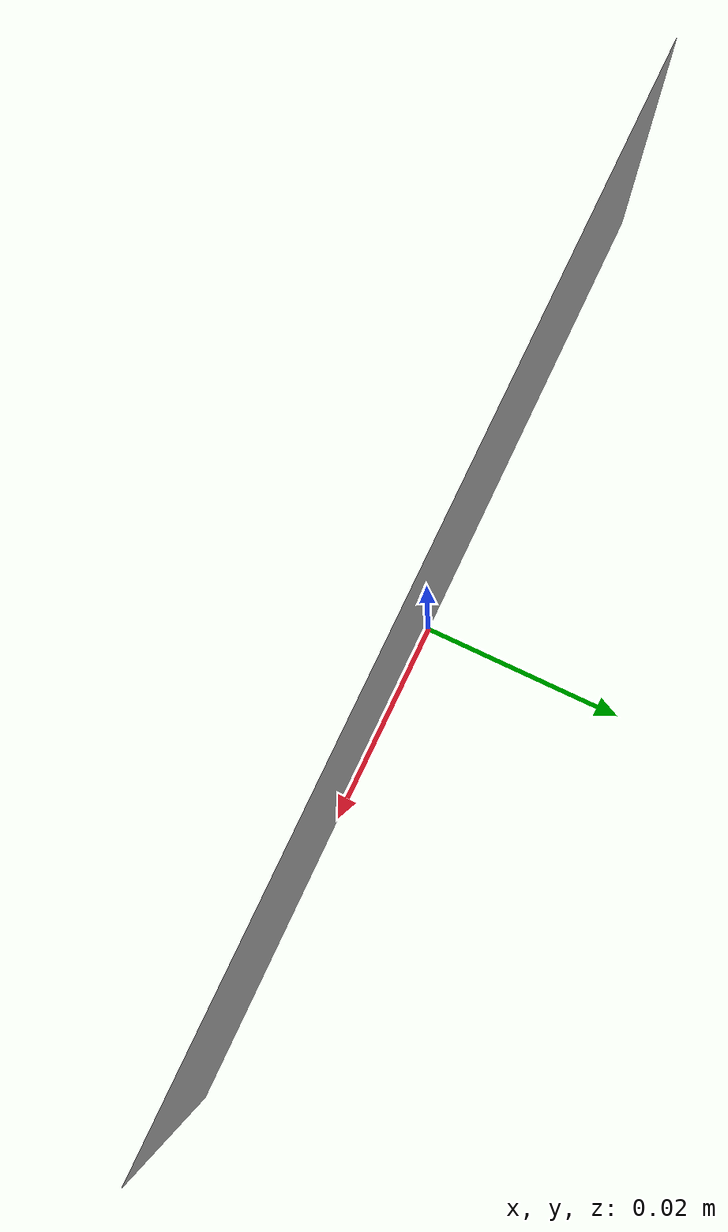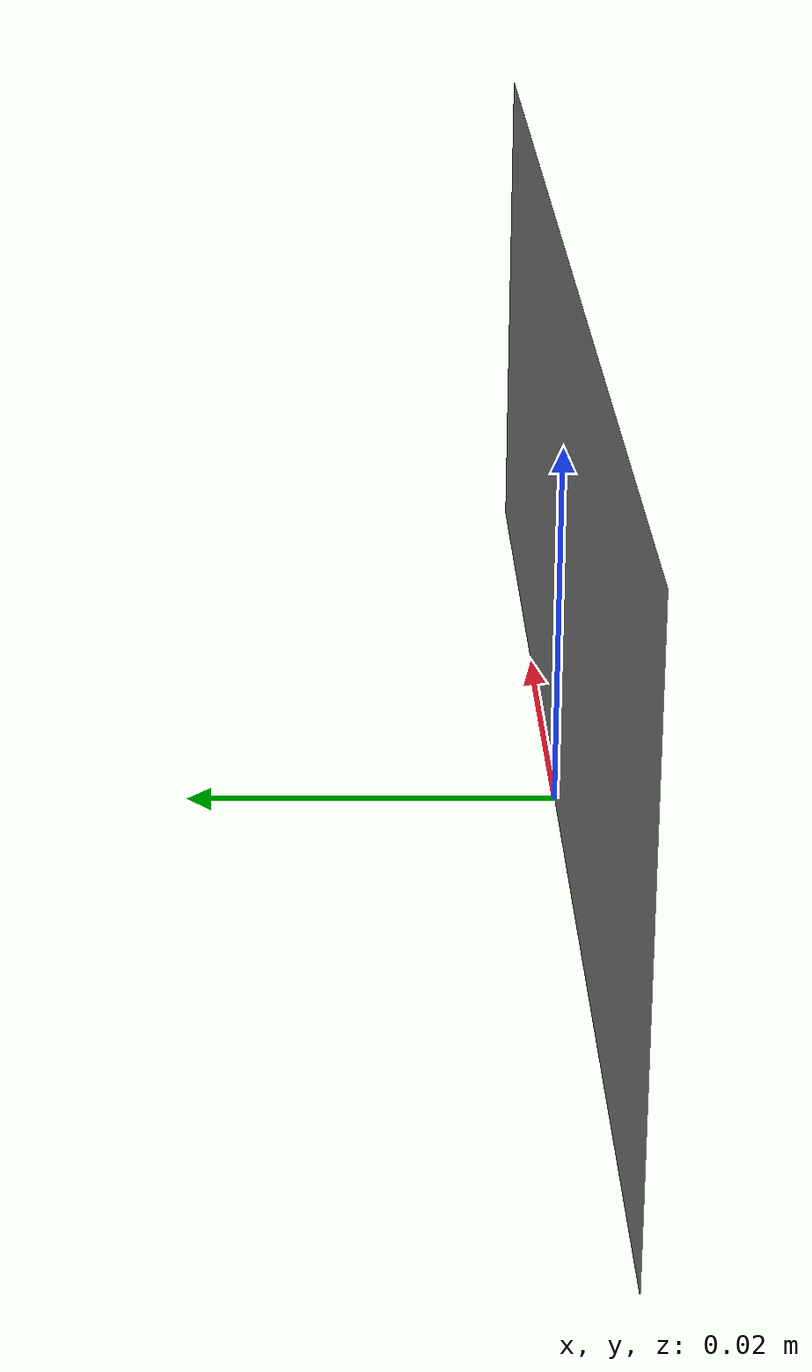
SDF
<?xml version="1.0"?>
<sdf version="1.6"><model name="plate_1"><static>true</static><link name="body">
<visual name="artwork"><geometry><mesh><uri>model://plate_1/meshes/card.dae</uri></mesh></geometry><cast_shadows>false</cast_shadows></visual><collision name="card"><pose>0 0 0.015000 0 0 0</pose><geometry><box><size>0.095000 0.005000 0.030000</size></box></geometry></collision>
 </link></model></sdf>
